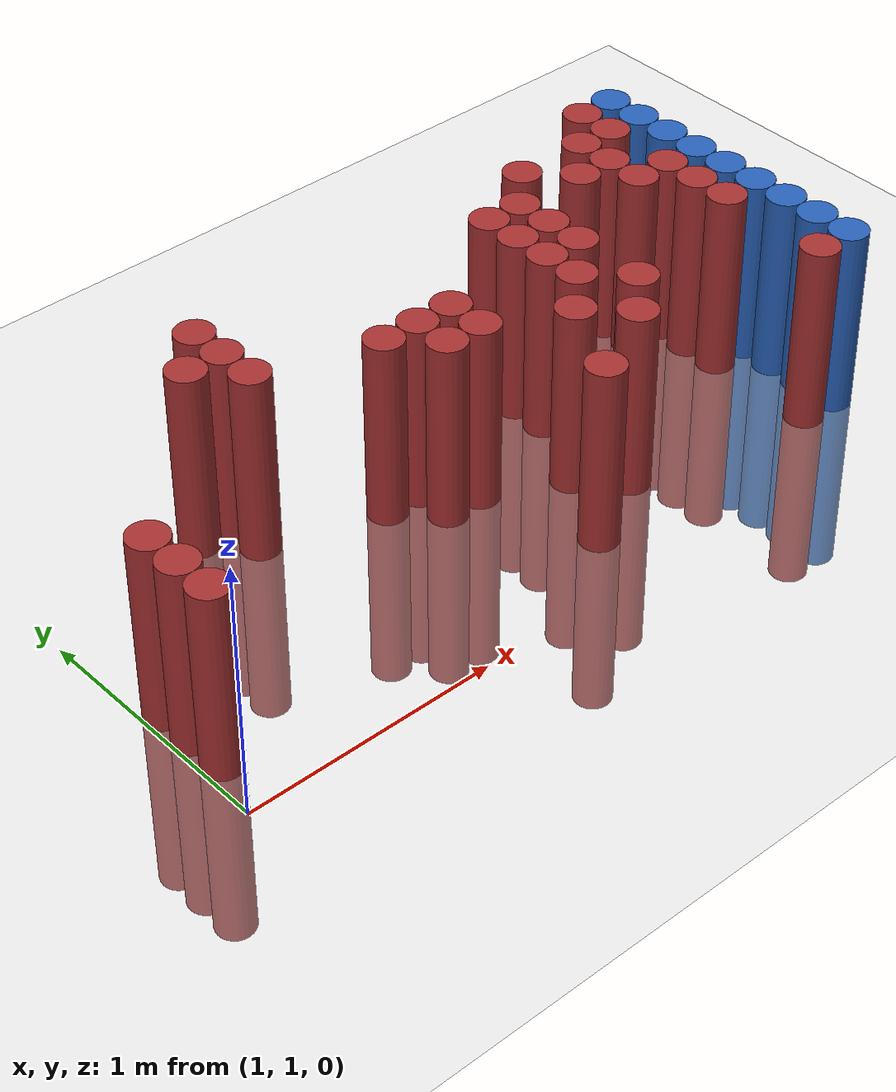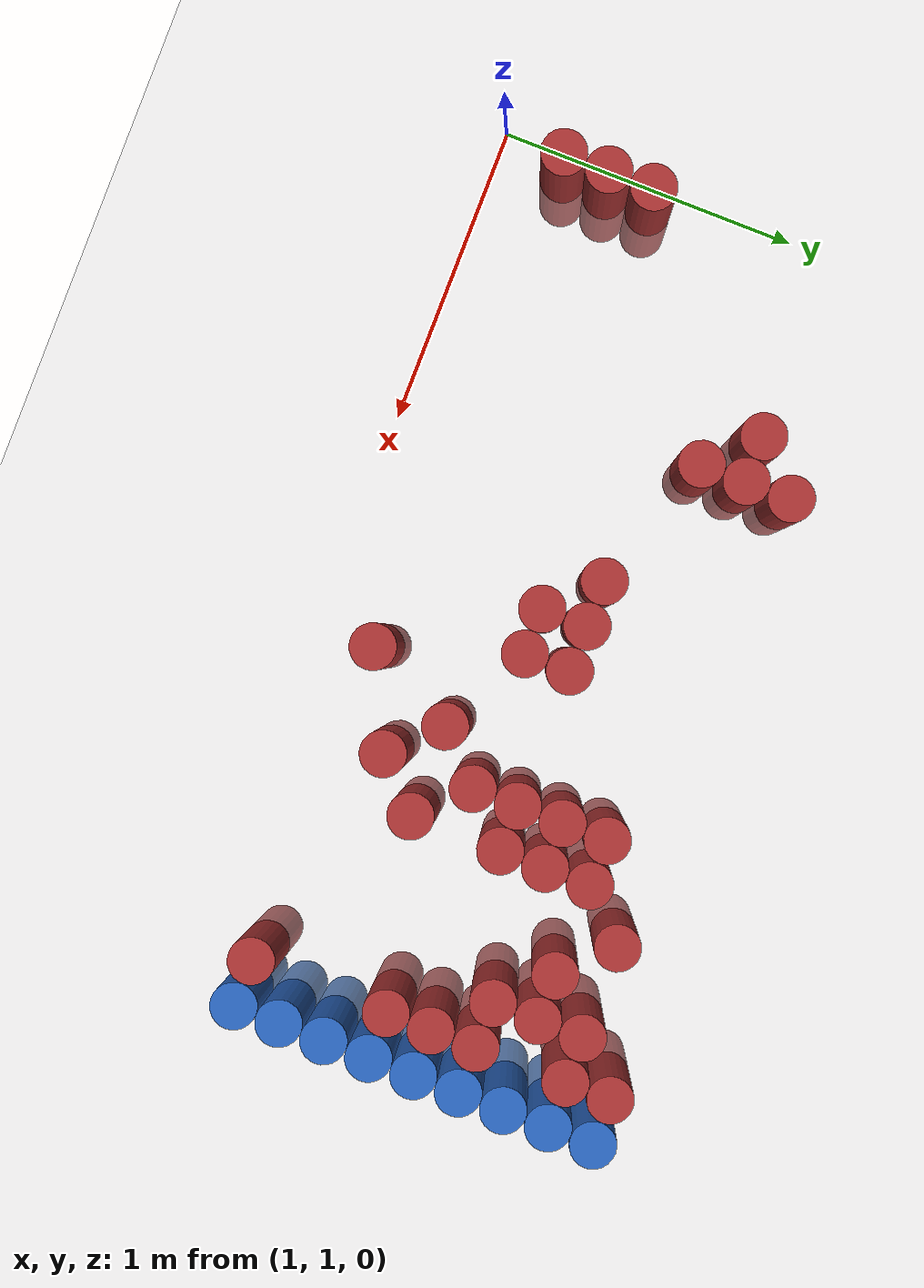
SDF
<sdf version="1.6">
 <world name="default">
  <model name="ground_plane">
   <static>1</static>
   <link name="link">
    <collision name="collision">
     <geometry><plane><normal>0 0 1</normal><size>100 100</size></plane></geometry>
     <surface><friction><ode><mu>100</mu><mu2>50</mu2></ode></friction></surface>
    </collision>
    <visual name="visual">
     <cast_shadows>0</cast_shadows>
     <geometry><plane><normal>0 0 1</normal><size>100 100</size></plane></geometry>
     <material>
      <script><uri>file://media/materials/scripts/gazebo.material</uri><name>Gazebo/Grey</name></script>
     </material>
    </visual>
   </link>
  </model>
  <model name="unit_cylinder_132">
   <static>1</static>
   <pose>3.925000 1.375000 0.000000 0.000000 0.000000 0.000000</pose>
   <link name="link">
    <inertial>
     <mass>1</mass>
     <inertia><ixx>0.145833</ixx><ixy>0</ixy><ixz>0</ixz><iyy>0.145833</iyy><iyz>0</iyz><izz>0.125</izz></inertia>
    </inertial>
    <collision name="collision">
     <geometry><cylinder><radius>0.075000</radius><length>1.5</length></cylinder></geometry>
    </collision>
    <visual name="visual">
     <geometry><cylinder><radius>0.075000</radius><length>1.5</length></cylinder></geometry>
     <material>
      <ambient>0.152000 0.379000 0.720000 1</ambient>
      <diffuse>0.152000 0.379000 0.720000 1</diffuse>
     </material>
     <material>
      <script><name>Gazebo/Grey</name><uri>file://media/materials/scripts/gazebo.material</uri></script>
     </material>
    </visual>
   </link>
  </model>
  <model name="unit_cylinder_134">
   <static>1</static>
   <pose>3.925000 1.525000 0.000000 0.000000 0.000000 0.000000</pose>
   <link name="link">
    <inertial>
     <mass>1</mass>
     <inertia><ixx>0.145833</ixx><ixy>0</ixy><ixz>0</ixz><iyy>0.145833</iyy><iyz>0</iyz><izz>0.125</izz></inertia>
    </inertial>
    <collision name="collision">
     <geometry><cylinder><radius>0.075000</radius><length>1.5</length></cylinder></geometry>
    </collision>
    <visual name="visual">
     <geometry><cylinder><radius>0.075000</radius><length>1.5</length></cylinder></geometry>
     <material>
      <ambient>0.152000 0.379000 0.720000 1</ambient>
      <diffuse>0.152000 0.379000 0.720000 1</diffuse>
     </material>
     <material>
      <script><name>Gazebo/Grey</name><uri>file://media/materials/scripts/gazebo.material</uri></script>
     </material>
    </visual>
   </link>
  </model>
  <model name="unit_cylinder_136">
   <static>1</static>
   <pose>3.925000 1.675000 0.000000 0.000000 0.000000 0.000000</pose>
   <link name="link">
    <inertial>
     <mass>1</mass>
     <inertia><ixx>0.145833</ixx><ixy>0</ixy><ixz>0</ixz><iyy>0.145833</iyy><iyz>0</iyz><izz>0.125</izz></inertia>
    </inertial>
    <collision name="collision">
     <geometry><cylinder><radius>0.075000</radius><length>1.5</length></cylinder></geometry>
    </collision>
    <visual name="visual">
     <geometry><cylinder><radius>0.075000</radius><length>1.5</length></cylinder></geometry>
     <material>
      <ambient>0.152000 0.379000 0.720000 1</ambient>
      <diffuse>0.152000 0.379000 0.720000 1</diffuse>
     </material>
     <material>
      <script><name>Gazebo/Grey</name><uri>file://media/materials/scripts/gazebo.material</uri></script>
     </material>
    </visual>
   </link>
  </model>
  <model name="unit_cylinder_138">
   <static>1</static>
   <pose>3.925000 1.825000 0.000000 0.000000 0.000000 0.000000</pose>
   <link name="link">
    <inertial>
     <mass>1</mass>
     <inertia><ixx>0.145833</ixx><ixy>0</ixy><ixz>0</ixz><iyy>0.145833</iyy><iyz>0</iyz><izz>0.125</izz></inertia>
    </inertial>
    <collision name="collision">
     <geometry><cylinder><radius>0.075000</radius><length>1.5</length></cylinder></geometry>
    </collision>
    <visual name="visual">
     <geometry><cylinder><radius>0.075000</radius><length>1.5</length></cylinder></geometry>
     <material>
      <ambient>0.152000 0.379000 0.720000 1</ambient>
      <diffuse>0.152000 0.379000 0.720000 1</diffuse>
     </material>
     <material>
      <script><name>Gazebo/Grey</name><uri>file://media/materials/scripts/gazebo.material</uri></script>
     </material>
    </visual>
   </link>
  </model>
  <model name="unit_cylinder_140">
   <static>1</static>
   <pose>3.925000 1.975000 0.000000 0.000000 0.000000 0.000000</pose>
   <link name="link">
    <inertial>
     <mass>1</mass>
     <inertia><ixx>0.145833</ixx><ixy>0</ixy><ixz>0</ixz><iyy>0.145833</iyy><iyz>0</iyz><izz>0.125</izz></inertia>
    </inertial>
    <collision name="collision">
     <geometry><cylinder><radius>0.075000</radius><length>1.5</length></cylinder></geometry>
    </collision>
    <visual name="visual">
     <geometry><cylinder><radius>0.075000</radius><length>1.5</length></cylinder></geometry>
     <material>
      <ambient>0.152000 0.379000 0.720000 1</ambient>
      <diffuse>0.152000 0.379000 0.720000 1</diffuse>
     </material>
     <material>
      <script><name>Gazebo/Grey</name><uri>file://media/materials/scripts/gazebo.material</uri></script>
     </material>
    </visual>
   </link>
  </model>
  <model name="unit_cylinder_142">
   <static>1</static>
   <pose>3.925000 2.125000 0.000000 0.000000 0.000000 0.000000</pose>
   <link name="link">
    <inertial>
     <mass>1</mass>
     <inertia><ixx>0.145833</ixx><ixy>0</ixy><ixz>0</ixz><iyy>0.145833</iyy><iyz>0</iyz><izz>0.125</izz></inertia>
    </inertial>
    <collision name="collision">
     <geometry><cylinder><radius>0.075000</radius><length>1.5</length></cylinder></geometry>
    </collision>
    <visual name="visual">
     <geometry><cylinder><radius>0.075000</radius><length>1.5</length></cylinder></geometry>
     <material>
      <ambient>0.152000 0.379000 0.720000 1</ambient>
      <diffuse>0.152000 0.379000 0.720000 1</diffuse>
     </material>
     <material>
      <script><name>Gazebo/Grey</name><uri>file://media/materials/scripts/gazebo.material</uri></script>
     </material>
    </visual>
   </link>
  </model>
  <model name="unit_cylinder_144">
   <static>1</static>
   <pose>3.925000 2.275000 0.000000 0.000000 0.000000 0.000000</pose>
   <link name="link">
    <inertial>
     <mass>1</mass>
     <inertia><ixx>0.145833</ixx><ixy>0</ixy><ixz>0</ixz><iyy>0.145833</iyy><iyz>0</iyz><izz>0.125</izz></inertia>
    </inertial>
    <collision name="collision">
     <geometry><cylinder><radius>0.075000</radius><length>1.5</length></cylinder></geometry>
    </collision>
    <visual name="visual">
     <geometry><cylinder><radius>0.075000</radius><length>1.5</length></cylinder></geometry>
     <material>
      <ambient>0.152000 0.379000 0.720000 1</ambient>
      <diffuse>0.152000 0.379000 0.720000 1</diffuse>
     </material>
     <material>
      <script><name>Gazebo/Grey</name><uri>file://media/materials/scripts/gazebo.material</uri></script>
     </material>
    </visual>
   </link>
  </model>
  <model name="unit_cylinder_146">
   <static>1</static>
   <pose>3.925000 2.425000 0.000000 0.000000 0.000000 0.000000</pose>
   <link name="link">
    <inertial>
     <mass>1</mass>
     <inertia><ixx>0.145833</ixx><ixy>0</ixy><ixz>0</ixz><iyy>0.145833</iyy><iyz>0</iyz><izz>0.125</izz></inertia>
    </inertial>
    <collision name="collision">
     <geometry><cylinder><radius>0.075000</radius><length>1.5</length></cylinder></geometry>
    </collision>
    <visual name="visual">
     <geometry><cylinder><radius>0.075000</radius><length>1.5</length></cylinder></geometry>
     <material>
      <ambient>0.152000 0.379000 0.720000 1</ambient>
      <diffuse>0.152000 0.379000 0.720000 1</diffuse>
     </material>
     <material>
      <script><name>Gazebo/Grey</name><uri>file://media/materials/scripts/gazebo.material</uri></script>
     </material>
    </visual>
   </link>
  </model>
  <model name="unit_cylinder_426">
   <static>1</static>
   <pose>1.075000 1.225000 0.000000 0.000000 0.000000 0.000000</pose>
   <link name="link">
    <inertial>
     <mass>1</mass>
     <inertia><ixx>0.145833</ixx><ixy>0</ixy><ixz>0</ixz><iyy>0.145833</iyy><iyz>0</iyz><izz>0.125</izz></inertia>
    </inertial>
    <collision name="collision">
     <geometry><cylinder><radius>0.075000</radius><length>1.5</length></cylinder></geometry>
    </collision>
    <visual name="visual">
     <geometry><cylinder><radius>0.075000</radius><length>1.5</length></cylinder></geometry>
     <material>
      <ambient>0.648000 0.192000 0.192000 1</ambient>
      <diffuse>0.648000 0.192000 0.192000 1</diffuse>
     </material>
     <material>
      <script><name>Gazebo/Grey</name><uri>file://media/materials/scripts/gazebo.material</uri></script>
     </material>
    </visual>
   </link>
  </model>
  <model name="unit_cylinder_427">
   <static>1</static>
   <pose>1.075000 1.375000 0.000000 0.000000 0.000000 0.000000</pose>
   <link name="link">
    <inertial>
     <mass>1</mass>
     <inertia><ixx>0.145833</ixx><ixy>0</ixy><ixz>0</ixz><iyy>0.145833</iyy><iyz>0</iyz><izz>0.125</izz></inertia>
    </inertial>
    <collision name="collision">
     <geometry><cylinder><radius>0.075000</radius><length>1.5</length></cylinder></geometry>
    </collision>
    <visual name="visual">
     <geometry><cylinder><radius>0.075000</radius><length>1.5</length></cylinder></geometry>
     <material>
      <ambient>0.648000 0.192000 0.192000 1</ambient>
      <diffuse>0.648000 0.192000 0.192000 1</diffuse>
     </material>
     <material>
      <script><name>Gazebo/Grey</name><uri>file://media/materials/scripts/gazebo.material</uri></script>
     </material>
    </visual>
   </link>
  </model>
  <model name="unit_cylinder_428">
   <static>1</static>
   <pose>1.075000 1.525000 0.000000 0.000000 0.000000 0.000000</pose>
   <link name="link">
    <inertial>
     <mass>1</mass>
     <inertia><ixx>0.145833</ixx><ixy>0</ixy><ixz>0</ixz><iyy>0.145833</iyy><iyz>0</iyz><izz>0.125</izz></inertia>
    </inertial>
    <collision name="collision">
     <geometry><cylinder><radius>0.075000</radius><length>1.5</length></cylinder></geometry>
    </collision>
    <visual name="visual">
     <geometry><cylinder><radius>0.075000</radius><length>1.5</length></cylinder></geometry>
     <material>
      <ambient>0.648000 0.192000 0.192000 1</ambient>
      <diffuse>0.648000 0.192000 0.192000 1</diffuse>
     </material>
     <material>
      <script><name>Gazebo/Grey</name><uri>file://media/materials/scripts/gazebo.material</uri></script>
     </material>
    </visual>
   </link>
  </model>
  <model name="unit_cylinder_453">
   <static>1</static>
   <pose>1.675000 2.125000 0.000000 0.000000 0.000000 0.000000</pose>
   <link name="link">
    <inertial>
     <mass>1</mass>
     <inertia><ixx>0.145833</ixx><ixy>0</ixy><ixz>0</ixz><iyy>0.145833</iyy><iyz>0</iyz><izz>0.125</izz></inertia>
    </inertial>
    <collision name="collision">
     <geometry><cylinder><radius>0.075000</radius><length>1.5</length></cylinder></geometry>
    </collision>
    <visual name="visual">
     <geometry><cylinder><radius>0.075000</radius><length>1.5</length></cylinder></geometry>
     <material>
      <ambient>0.648000 0.192000 0.192000 1</ambient>
      <diffuse>0.648000 0.192000 0.192000 1</diffuse>
     </material>
     <material>
      <script><name>Gazebo/Grey</name><uri>file://media/materials/scripts/gazebo.material</uri></script>
     </material>
    </visual>
   </link>
  </model>
  <model name="unit_cylinder_460">
   <static>1</static>
   <pose>1.825000 1.975000 0.000000 0.000000 0.000000 0.000000</pose>
   <link name="link">
    <inertial>
     <mass>1</mass>
     <inertia><ixx>0.145833</ixx><ixy>0</ixy><ixz>0</ixz><iyy>0.145833</iyy><iyz>0</iyz><izz>0.125</izz></inertia>
    </inertial>
    <collision name="collision">
     <geometry><cylinder><radius>0.075000</radius><length>1.5</length></cylinder></geometry>
    </collision>
    <visual name="visual">
     <geometry><cylinder><radius>0.075000</radius><length>1.5</length></cylinder></geometry>
     <material>
      <ambient>0.648000 0.192000 0.192000 1</ambient>
      <diffuse>0.648000 0.192000 0.192000 1</diffuse>
     </material>
     <material>
      <script><name>Gazebo/Grey</name><uri>file://media/materials/scripts/gazebo.material</uri></script>
     </material>
    </visual>
   </link>
  </model>
  <model name="unit_cylinder_461">
   <static>1</static>
   <pose>1.825000 2.125000 0.000000 0.000000 0.000000 0.000000</pose>
   <link name="link">
    <inertial>
     <mass>1</mass>
     <inertia><ixx>0.145833</ixx><ixy>0</ixy><ixz>0</ixz><iyy>0.145833</iyy><iyz>0</iyz><izz>0.125</izz></inertia>
    </inertial>
    <collision name="collision">
     <geometry><cylinder><radius>0.075000</radius><length>1.5</length></cylinder></geometry>
    </collision>
    <visual name="visual">
     <geometry><cylinder><radius>0.075000</radius><length>1.5</length></cylinder></geometry>
     <material>
      <ambient>0.648000 0.192000 0.192000 1</ambient>
      <diffuse>0.648000 0.192000 0.192000 1</diffuse>
     </material>
     <material>
      <script><name>Gazebo/Grey</name><uri>file://media/materials/scripts/gazebo.material</uri></script>
     </material>
    </visual>
   </link>
  </model>
  <model name="unit_cylinder_462">
   <static>1</static>
   <pose>1.825000 2.275000 0.000000 0.000000 0.000000 0.000000</pose>
   <link name="link">
    <inertial>
     <mass>1</mass>
     <inertia><ixx>0.145833</ixx><ixy>0</ixy><ixz>0</ixz><iyy>0.145833</iyy><iyz>0</iyz><izz>0.125</izz></inertia>
    </inertial>
    <collision name="collision">
     <geometry><cylinder><radius>0.075000</radius><length>1.5</length></cylinder></geometry>
    </collision>
    <visual name="visual">
     <geometry><cylinder><radius>0.075000</radius><length>1.5</length></cylinder></geometry>
     <material>
      <ambient>0.648000 0.192000 0.192000 1</ambient>
      <diffuse>0.648000 0.192000 0.192000 1</diffuse>
     </material>
     <material>
      <script><name>Gazebo/Grey</name><uri>file://media/materials/scripts/gazebo.material</uri></script>
     </material>
    </visual>
   </link>
  </model>
  <model name="unit_cylinder_469">
   <static>1</static>
   <pose>2.275000 1.825000 0.000000 0.000000 0.000000 0.000000</pose>
   <link name="link">
    <inertial>
     <mass>1</mass>
     <inertia><ixx>0.145833</ixx><ixy>0</ixy><ixz>0</ixz><iyy>0.145833</iyy><iyz>0</iyz><izz>0.125</izz></inertia>
    </inertial>
    <collision name="collision">
     <geometry><cylinder><radius>0.075000</radius><length>1.5</length></cylinder></geometry>
    </collision>
    <visual name="visual">
     <geometry><cylinder><radius>0.075000</radius><length>1.5</length></cylinder></geometry>
     <material>
      <ambient>0.648000 0.192000 0.192000 1</ambient>
      <diffuse>0.648000 0.192000 0.192000 1</diffuse>
     </material>
     <material>
      <script><name>Gazebo/Grey</name><uri>file://media/materials/scripts/gazebo.material</uri></script>
     </material>
    </visual>
   </link>
  </model>
  <model name="unit_cylinder_472">
   <static>1</static>
   <pose>2.425000 1.675000 0.000000 0.000000 0.000000 0.000000</pose>
   <link name="link">
    <inertial>
     <mass>1</mass>
     <inertia><ixx>0.145833</ixx><ixy>0</ixy><ixz>0</ixz><iyy>0.145833</iyy><iyz>0</iyz><izz>0.125</izz></inertia>
    </inertial>
    <collision name="collision">
     <geometry><cylinder><radius>0.075000</radius><length>1.5</length></cylinder></geometry>
    </collision>
    <visual name="visual">
     <geometry><cylinder><radius>0.075000</radius><length>1.5</length></cylinder></geometry>
     <material>
      <ambient>0.648000 0.192000 0.192000 1</ambient>
      <diffuse>0.648000 0.192000 0.192000 1</diffuse>
     </material>
     <material>
      <script><name>Gazebo/Grey</name><uri>file://media/materials/scripts/gazebo.material</uri></script>
     </material>
    </visual>
   </link>
  </model>
  <model name="unit_cylinder_473">
   <static>1</static>
   <pose>2.425000 1.825000 0.000000 0.000000 0.000000 0.000000</pose>
   <link name="link">
    <inertial>
     <mass>1</mass>
     <inertia><ixx>0.145833</ixx><ixy>0</ixy><ixz>0</ixz><iyy>0.145833</iyy><iyz>0</iyz><izz>0.125</izz></inertia>
    </inertial>
    <collision name="collision">
     <geometry><cylinder><radius>0.075000</radius><length>1.5</length></cylinder></geometry>
    </collision>
    <visual name="visual">
     <geometry><cylinder><radius>0.075000</radius><length>1.5</length></cylinder></geometry>
     <material>
      <ambient>0.648000 0.192000 0.192000 1</ambient>
      <diffuse>0.648000 0.192000 0.192000 1</diffuse>
     </material>
     <material>
      <script><name>Gazebo/Grey</name><uri>file://media/materials/scripts/gazebo.material</uri></script>
     </material>
    </visual>
   </link>
  </model>
  <model name="unit_cylinder_478">
   <static>1</static>
   <pose>2.575000 1.675000 0.000000 0.000000 0.000000 0.000000</pose>
   <link name="link">
    <inertial>
     <mass>1</mass>
     <inertia><ixx>0.145833</ixx><ixy>0</ixy><ixz>0</ixz><iyy>0.145833</iyy><iyz>0</iyz><izz>0.125</izz></inertia>
    </inertial>
    <collision name="collision">
     <geometry><cylinder><radius>0.075000</radius><length>1.5</length></cylinder></geometry>
    </collision>
    <visual name="visual">
     <geometry><cylinder><radius>0.075000</radius><length>1.5</length></cylinder></geometry>
     <material>
      <ambient>0.648000 0.192000 0.192000 1</ambient>
      <diffuse>0.648000 0.192000 0.192000 1</diffuse>
     </material>
     <material>
      <script><name>Gazebo/Grey</name><uri>file://media/materials/scripts/gazebo.material</uri></script>
     </material>
    </visual>
   </link>
  </model>
  <model name="unit_cylinder_479">
   <static>1</static>
   <pose>2.575000 1.825000 0.000000 0.000000 0.000000 0.000000</pose>
   <link name="link">
    <inertial>
     <mass>1</mass>
     <inertia><ixx>0.145833</ixx><ixy>0</ixy><ixz>0</ixz><iyy>0.145833</iyy><iyz>0</iyz><izz>0.125</izz></inertia>
    </inertial>
    <collision name="collision">
     <geometry><cylinder><radius>0.075000</radius><length>1.5</length></cylinder></geometry>
    </collision>
    <visual name="visual">
     <geometry><cylinder><radius>0.075000</radius><length>1.5</length></cylinder></geometry>
     <material>
      <ambient>0.648000 0.192000 0.192000 1</ambient>
      <diffuse>0.648000 0.192000 0.192000 1</diffuse>
     </material>
     <material>
      <script><name>Gazebo/Grey</name><uri>file://media/materials/scripts/gazebo.material</uri></script>
     </material>
    </visual>
   </link>
  </model>
  <model name="unit_cylinder_485">
   <static>1</static>
   <pose>2.725000 1.225000 0.000000 0.000000 0.000000 0.000000</pose>
   <link name="link">
    <inertial>
     <mass>1</mass>
     <inertia><ixx>0.145833</ixx><ixy>0</ixy><ixz>0</ixz><iyy>0.145833</iyy><iyz>0</iyz><izz>0.125</izz></inertia>
    </inertial>
    <collision name="collision">
     <geometry><cylinder><radius>0.075000</radius><length>1.5</length></cylinder></geometry>
    </collision>
    <visual name="visual">
     <geometry><cylinder><radius>0.075000</radius><length>1.5</length></cylinder></geometry>
     <material>
      <ambient>0.648000 0.192000 0.192000 1</ambient>
      <diffuse>0.648000 0.192000 0.192000 1</diffuse>
     </material>
     <material>
      <script><name>Gazebo/Grey</name><uri>file://media/materials/scripts/gazebo.material</uri></script>
     </material>
    </visual>
   </link>
  </model>
  <model name="unit_cylinder_487">
   <static>1</static>
   <pose>2.875000 1.525000 0.000000 0.000000 0.000000 0.000000</pose>
   <link name="link">
    <inertial>
     <mass>1</mass>
     <inertia><ixx>0.145833</ixx><ixy>0</ixy><ixz>0</ixz><iyy>0.145833</iyy><iyz>0</iyz><izz>0.125</izz></inertia>
    </inertial>
    <collision name="collision">
     <geometry><cylinder><radius>0.075000</radius><length>1.5</length></cylinder></geometry>
    </collision>
    <visual name="visual">
     <geometry><cylinder><radius>0.075000</radius><length>1.5</length></cylinder></geometry>
     <material>
      <ambient>0.648000 0.192000 0.192000 1</ambient>
      <diffuse>0.648000 0.192000 0.192000 1</diffuse>
     </material>
     <material>
      <script><name>Gazebo/Grey</name><uri>file://media/materials/scripts/gazebo.material</uri></script>
     </material>
    </visual>
   </link>
  </model>
  <model name="unit_cylinder_492">
   <static>1</static>
   <pose>3.025000 1.375000 0.000000 0.000000 0.000000 0.000000</pose>
   <link name="link">
    <inertial>
     <mass>1</mass>
     <inertia><ixx>0.145833</ixx><ixy>0</ixy><ixz>0</ixz><iyy>0.145833</iyy><iyz>0</iyz><izz>0.125</izz></inertia>
    </inertial>
    <collision name="collision">
     <geometry><cylinder><radius>0.075000</radius><length>1.5</length></cylinder></geometry>
    </collision>
    <visual name="visual">
     <geometry><cylinder><radius>0.075000</radius><length>1.5</length></cylinder></geometry>
     <material>
      <ambient>0.648000 0.192000 0.192000 1</ambient>
      <diffuse>0.648000 0.192000 0.192000 1</diffuse>
     </material>
     <material>
      <script><name>Gazebo/Grey</name><uri>file://media/materials/scripts/gazebo.material</uri></script>
     </material>
    </visual>
   </link>
  </model>
  <model name="unit_cylinder_493">
   <static>1</static>
   <pose>3.025000 1.675000 0.000000 0.000000 0.000000 0.000000</pose>
   <link name="link">
    <inertial>
     <mass>1</mass>
     <inertia><ixx>0.145833</ixx><ixy>0</ixy><ixz>0</ixz><iyy>0.145833</iyy><iyz>0</iyz><izz>0.125</izz></inertia>
    </inertial>
    <collision name="collision">
     <geometry><cylinder><radius>0.075000</radius><length>1.5</length></cylinder></geometry>
    </collision>
    <visual name="visual">
     <geometry><cylinder><radius>0.075000</radius><length>1.5</length></cylinder></geometry>
     <material>
      <ambient>0.648000 0.192000 0.192000 1</ambient>
      <diffuse>0.648000 0.192000 0.192000 1</diffuse>
     </material>
     <material>
      <script><name>Gazebo/Grey</name><uri>file://media/materials/scripts/gazebo.material</uri></script>
     </material>
    </visual>
   </link>
  </model>
  <model name="unit_cylinder_494">
   <static>1</static>
   <pose>3.025000 1.825000 0.000000 0.000000 0.000000 0.000000</pose>
   <link name="link">
    <inertial>
     <mass>1</mass>
     <inertia><ixx>0.145833</ixx><ixy>0</ixy><ixz>0</ixz><iyy>0.145833</iyy><iyz>0</iyz><izz>0.125</izz></inertia>
    </inertial>
    <collision name="collision">
     <geometry><cylinder><radius>0.075000</radius><length>1.5</length></cylinder></geometry>
    </collision>
    <visual name="visual">
     <geometry><cylinder><radius>0.075000</radius><length>1.5</length></cylinder></geometry>
     <material>
      <ambient>0.648000 0.192000 0.192000 1</ambient>
      <diffuse>0.648000 0.192000 0.192000 1</diffuse>
     </material>
     <material>
      <script><name>Gazebo/Grey</name><uri>file://media/materials/scripts/gazebo.material</uri></script>
     </material>
    </visual>
   </link>
  </model>
  <model name="unit_cylinder_495">
   <static>1</static>
   <pose>3.025000 1.975000 0.000000 0.000000 0.000000 0.000000</pose>
   <link name="link">
    <inertial>
     <mass>1</mass>
     <inertia><ixx>0.145833</ixx><ixy>0</ixy><ixz>0</ixz><iyy>0.145833</iyy><iyz>0</iyz><izz>0.125</izz></inertia>
    </inertial>
    <collision name="collision">
     <geometry><cylinder><radius>0.075000</radius><length>1.5</length></cylinder></geometry>
    </collision>
    <visual name="visual">
     <geometry><cylinder><radius>0.075000</radius><length>1.5</length></cylinder></geometry>
     <material>
      <ambient>0.648000 0.192000 0.192000 1</ambient>
      <diffuse>0.648000 0.192000 0.192000 1</diffuse>
     </material>
     <material>
      <script><name>Gazebo/Grey</name><uri>file://media/materials/scripts/gazebo.material</uri></script>
     </material>
    </visual>
   </link>
  </model>
  <model name="unit_cylinder_496">
   <static>1</static>
   <pose>3.025000 2.125000 0.000000 0.000000 0.000000 0.000000</pose>
   <link name="link">
    <inertial>
     <mass>1</mass>
     <inertia><ixx>0.145833</ixx><ixy>0</ixy><ixz>0</ixz><iyy>0.145833</iyy><iyz>0</iyz><izz>0.125</izz></inertia>
    </inertial>
    <collision name="collision">
     <geometry><cylinder><radius>0.075000</radius><length>1.5</length></cylinder></geometry>
    </collision>
    <visual name="visual">
     <geometry><cylinder><radius>0.075000</radius><length>1.5</length></cylinder></geometry>
     <material>
      <ambient>0.648000 0.192000 0.192000 1</ambient>
      <diffuse>0.648000 0.192000 0.192000 1</diffuse>
     </material>
     <material>
      <script><name>Gazebo/Grey</name><uri>file://media/materials/scripts/gazebo.material</uri></script>
     </material>
    </visual>
   </link>
  </model>
  <model name="unit_cylinder_501">
   <static>1</static>
   <pose>3.175000 1.525000 0.000000 0.000000 0.000000 0.000000</pose>
   <link name="link">
    <inertial>
     <mass>1</mass>
     <inertia><ixx>0.145833</ixx><ixy>0</ixy><ixz>0</ixz><iyy>0.145833</iyy><iyz>0</iyz><izz>0.125</izz></inertia>
    </inertial>
    <collision name="collision">
     <geometry><cylinder><radius>0.075000</radius><length>1.5</length></cylinder></geometry>
    </collision>
    <visual name="visual">
     <geometry><cylinder><radius>0.075000</radius><length>1.5</length></cylinder></geometry>
     <material>
      <ambient>0.648000 0.192000 0.192000 1</ambient>
      <diffuse>0.648000 0.192000 0.192000 1</diffuse>
     </material>
     <material>
      <script><name>Gazebo/Grey</name><uri>file://media/materials/scripts/gazebo.material</uri></script>
     </material>
    </visual>
   </link>
  </model>
  <model name="unit_cylinder_502">
   <static>1</static>
   <pose>3.175000 1.825000 0.000000 0.000000 0.000000 0.000000</pose>
   <link name="link">
    <inertial>
     <mass>1</mass>
     <inertia><ixx>0.145833</ixx><ixy>0</ixy><ixz>0</ixz><iyy>0.145833</iyy><iyz>0</iyz><izz>0.125</izz></inertia>
    </inertial>
    <collision name="collision">
     <geometry><cylinder><radius>0.075000</radius><length>1.5</length></cylinder></geometry>
    </collision>
    <visual name="visual">
     <geometry><cylinder><radius>0.075000</radius><length>1.5</length></cylinder></geometry>
     <material>
      <ambient>0.648000 0.192000 0.192000 1</ambient>
      <diffuse>0.648000 0.192000 0.192000 1</diffuse>
     </material>
     <material>
      <script><name>Gazebo/Grey</name><uri>file://media/materials/scripts/gazebo.material</uri></script>
     </material>
    </visual>
   </link>
  </model>
  <model name="unit_cylinder_503">
   <static>1</static>
   <pose>3.175000 1.975000 0.000000 0.000000 0.000000 0.000000</pose>
   <link name="link">
    <inertial>
     <mass>1</mass>
     <inertia><ixx>0.145833</ixx><ixy>0</ixy><ixz>0</ixz><iyy>0.145833</iyy><iyz>0</iyz><izz>0.125</izz></inertia>
    </inertial>
    <collision name="collision">
     <geometry><cylinder><radius>0.075000</radius><length>1.5</length></cylinder></geometry>
    </collision>
    <visual name="visual">
     <geometry><cylinder><radius>0.075000</radius><length>1.5</length></cylinder></geometry>
     <material>
      <ambient>0.648000 0.192000 0.192000 1</ambient>
      <diffuse>0.648000 0.192000 0.192000 1</diffuse>
     </material>
     <material>
      <script><name>Gazebo/Grey</name><uri>file://media/materials/scripts/gazebo.material</uri></script>
     </material>
    </visual>
   </link>
  </model>
  <model name="unit_cylinder_504">
   <static>1</static>
   <pose>3.175000 2.125000 0.000000 0.000000 0.000000 0.000000</pose>
   <link name="link">
    <inertial>
     <mass>1</mass>
     <inertia><ixx>0.145833</ixx><ixy>0</ixy><ixz>0</ixz><iyy>0.145833</iyy><iyz>0</iyz><izz>0.125</izz></inertia>
    </inertial>
    <collision name="collision">
     <geometry><cylinder><radius>0.075000</radius><length>1.5</length></cylinder></geometry>
    </collision>
    <visual name="visual">
     <geometry><cylinder><radius>0.075000</radius><length>1.5</length></cylinder></geometry>
     <material>
      <ambient>0.648000 0.192000 0.192000 1</ambient>
      <diffuse>0.648000 0.192000 0.192000 1</diffuse>
     </material>
     <material>
      <script><name>Gazebo/Grey</name><uri>file://media/materials/scripts/gazebo.material</uri></script>
     </material>
    </visual>
   </link>
  </model>
  <model name="unit_cylinder_513">
   <static>1</static>
   <pose>3.325000 2.275000 0.000000 0.000000 0.000000 0.000000</pose>
   <link name="link">
    <inertial>
     <mass>1</mass>
     <inertia><ixx>0.145833</ixx><ixy>0</ixy><ixz>0</ixz><iyy>0.145833</iyy><iyz>0</iyz><izz>0.125</izz></inertia>
    </inertial>
    <collision name="collision">
     <geometry><cylinder><radius>0.075000</radius><length>1.5</length></cylinder></geometry>
    </collision>
    <visual name="visual">
     <geometry><cylinder><radius>0.075000</radius><length>1.5</length></cylinder></geometry>
     <material>
      <ambient>0.648000 0.192000 0.192000 1</ambient>
      <diffuse>0.648000 0.192000 0.192000 1</diffuse>
     </material>
     <material>
      <script><name>Gazebo/Grey</name><uri>file://media/materials/scripts/gazebo.material</uri></script>
     </material>
    </visual>
   </link>
  </model>
  <model name="unit_cylinder_519">
   <static>1</static>
   <pose>3.475000 2.125000 0.000000 0.000000 0.000000 0.000000</pose>
   <link name="link">
    <inertial>
     <mass>1</mass>
     <inertia><ixx>0.145833</ixx><ixy>0</ixy><ixz>0</ixz><iyy>0.145833</iyy><iyz>0</iyz><izz>0.125</izz></inertia>
    </inertial>
    <collision name="collision">
     <geometry><cylinder><radius>0.075000</radius><length>1.5</length></cylinder></geometry>
    </collision>
    <visual name="visual">
     <geometry><cylinder><radius>0.075000</radius><length>1.5</length></cylinder></geometry>
     <material>
      <ambient>0.648000 0.192000 0.192000 1</ambient>
      <diffuse>0.648000 0.192000 0.192000 1</diffuse>
     </material>
     <material>
      <script><name>Gazebo/Grey</name><uri>file://media/materials/scripts/gazebo.material</uri></script>
     </material>
    </visual>
   </link>
  </model>
  <model name="unit_cylinder_527">
   <static>1</static>
   <pose>3.625000 1.975000 0.000000 0.000000 0.000000 0.000000</pose>
   <link name="link">
    <inertial>
     <mass>1</mass>
     <inertia><ixx>0.145833</ixx><ixy>0</ixy><ixz>0</ixz><iyy>0.145833</iyy><iyz>0</iyz><izz>0.125</izz></inertia>
    </inertial>
    <collision name="collision">
     <geometry><cylinder><radius>0.075000</radius><length>1.5</length></cylinder></geometry>
    </collision>
    <visual name="visual">
     <geometry><cylinder><radius>0.075000</radius><length>1.5</length></cylinder></geometry>
     <material>
      <ambient>0.648000 0.192000 0.192000 1</ambient>
      <diffuse>0.648000 0.192000 0.192000 1</diffuse>
     </material>
     <material>
      <script><name>Gazebo/Grey</name><uri>file://media/materials/scripts/gazebo.material</uri></script>
     </material>
    </visual>
   </link>
  </model>
  <model name="unit_cylinder_528">
   <static>1</static>
   <pose>3.625000 2.125000 0.000000 0.000000 0.000000 0.000000</pose>
   <link name="link">
    <inertial>
     <mass>1</mass>
     <inertia><ixx>0.145833</ixx><ixy>0</ixy><ixz>0</ixz><iyy>0.145833</iyy><iyz>0</iyz><izz>0.125</izz></inertia>
    </inertial>
    <collision name="collision">
     <geometry><cylinder><radius>0.075000</radius><length>1.5</length></cylinder></geometry>
    </collision>
    <visual name="visual">
     <geometry><cylinder><radius>0.075000</radius><length>1.5</length></cylinder></geometry>
     <material>
      <ambient>0.648000 0.192000 0.192000 1</ambient>
      <diffuse>0.648000 0.192000 0.192000 1</diffuse>
     </material>
     <material>
      <script><name>Gazebo/Grey</name><uri>file://media/materials/scripts/gazebo.material</uri></script>
     </material>
    </visual>
   </link>
  </model>
  <model name="unit_cylinder_529">
   <static>1</static>
   <pose>3.625000 2.275000 0.000000 0.000000 0.000000 0.000000</pose>
   <link name="link">
    <inertial>
     <mass>1</mass>
     <inertia><ixx>0.145833</ixx><ixy>0</ixy><ixz>0</ixz><iyy>0.145833</iyy><iyz>0</iyz><izz>0.125</izz></inertia>
    </inertial>
    <collision name="collision">
     <geometry><cylinder><radius>0.075000</radius><length>1.5</length></cylinder></geometry>
    </collision>
    <visual name="visual">
     <geometry><cylinder><radius>0.075000</radius><length>1.5</length></cylinder></geometry>
     <material>
      <ambient>0.648000 0.192000 0.192000 1</ambient>
      <diffuse>0.648000 0.192000 0.192000 1</diffuse>
     </material>
     <material>
      <script><name>Gazebo/Grey</name><uri>file://media/materials/scripts/gazebo.material</uri></script>
     </material>
    </visual>
   </link>
  </model>
  <model name="unit_cylinder_546">
   <static>1</static>
   <pose>3.775000 1.225000 0.000000 0.000000 0.000000 0.000000</pose>
   <link name="link">
    <inertial>
     <mass>1</mass>
     <inertia><ixx>0.145833</ixx><ixy>0</ixy><ixz>0</ixz><iyy>0.145833</iyy><iyz>0</iyz><izz>0.125</izz></inertia>
    </inertial>
    <collision name="collision">
     <geometry><cylinder><radius>0.075000</radius><length>1.5</length></cylinder></geometry>
    </collision>
    <visual name="visual">
     <geometry><cylinder><radius>0.075000</radius><length>1.5</length></cylinder></geometry>
     <material>
      <ambient>0.648000 0.192000 0.192000 1</ambient>
      <diffuse>0.648000 0.192000 0.192000 1</diffuse>
     </material>
     <material>
      <script><name>Gazebo/Grey</name><uri>file://media/materials/scripts/gazebo.material</uri></script>
     </material>
    </visual>
   </link>
  </model>
  <model name="unit_cylinder_547">
   <static>1</static>
   <pose>3.775000 1.675000 0.000000 0.000000 0.000000 0.000000</pose>
   <link name="link">
    <inertial>
     <mass>1</mass>
     <inertia><ixx>0.145833</ixx><ixy>0</ixy><ixz>0</ixz><iyy>0.145833</iyy><iyz>0</iyz><izz>0.125</izz></inertia>
    </inertial>
    <collision name="collision">
     <geometry><cylinder><radius>0.075000</radius><length>1.5</length></cylinder></geometry>
    </collision>
    <visual name="visual">
     <geometry><cylinder><radius>0.075000</radius><length>1.5</length></cylinder></geometry>
     <material>
      <ambient>0.648000 0.192000 0.192000 1</ambient>
      <diffuse>0.648000 0.192000 0.192000 1</diffuse>
     </material>
     <material>
      <script><name>Gazebo/Grey</name><uri>file://media/materials/scripts/gazebo.material</uri></script>
     </material>
    </visual>
   </link>
  </model>
  <model name="unit_cylinder_548">
   <static>1</static>
   <pose>3.775000 1.825000 0.000000 0.000000 0.000000 0.000000</pose>
   <link name="link">
    <inertial>
     <mass>1</mass>
     <inertia><ixx>0.145833</ixx><ixy>0</ixy><ixz>0</ixz><iyy>0.145833</iyy><iyz>0</iyz><izz>0.125</izz></inertia>
    </inertial>
    <collision name="collision">
     <geometry><cylinder><radius>0.075000</radius><length>1.5</length></cylinder></geometry>
    </collision>
    <visual name="visual">
     <geometry><cylinder><radius>0.075000</radius><length>1.5</length></cylinder></geometry>
     <material>
      <ambient>0.648000 0.192000 0.192000 1</ambient>
      <diffuse>0.648000 0.192000 0.192000 1</diffuse>
     </material>
     <material>
      <script><name>Gazebo/Grey</name><uri>file://media/materials/scripts/gazebo.material</uri></script>
     </material>
    </visual>
   </link>
  </model>
  <model name="unit_cylinder_549">
   <static>1</static>
   <pose>3.775000 1.975000 0.000000 0.000000 0.000000 0.000000</pose>
   <link name="link">
    <inertial>
     <mass>1</mass>
     <inertia><ixx>0.145833</ixx><ixy>0</ixy><ixz>0</ixz><iyy>0.145833</iyy><iyz>0</iyz><izz>0.125</izz></inertia>
    </inertial>
    <collision name="collision">
     <geometry><cylinder><radius>0.075000</radius><length>1.5</length></cylinder></geometry>
    </collision>
    <visual name="visual">
     <geometry><cylinder><radius>0.075000</radius><length>1.5</length></cylinder></geometry>
     <material>
      <ambient>0.648000 0.192000 0.192000 1</ambient>
      <diffuse>0.648000 0.192000 0.192000 1</diffuse>
     </material>
     <material>
      <script><name>Gazebo/Grey</name><uri>file://media/materials/scripts/gazebo.material</uri></script>
     </material>
    </visual>
   </link>
  </model>
  <model name="unit_cylinder_550">
   <static>1</static>
   <pose>3.775000 2.275000 0.000000 0.000000 0.000000 0.000000</pose>
   <link name="link">
    <inertial>
     <mass>1</mass>
     <inertia><ixx>0.145833</ixx><ixy>0</ixy><ixz>0</ixz><iyy>0.145833</iyy><iyz>0</iyz><izz>0.125</izz></inertia>
    </inertial>
    <collision name="collision">
     <geometry><cylinder><radius>0.075000</radius><length>1.5</length></cylinder></geometry>
    </collision>
    <visual name="visual">
     <geometry><cylinder><radius>0.075000</radius><length>1.5</length></cylinder></geometry>
     <material>
      <ambient>0.648000 0.192000 0.192000 1</ambient>
      <diffuse>0.648000 0.192000 0.192000 1</diffuse>
     </material>
     <material>
      <script><name>Gazebo/Grey</name><uri>file://media/materials/scripts/gazebo.material</uri></script>
     </material>
    </visual>
   </link>
  </model>
  <model name="unit_cylinder_551">
   <static>1</static>
   <pose>3.775000 2.425000 0.000000 0.000000 0.000000 0.000000</pose>
   <link name="link">
    <inertial>
     <mass>1</mass>
     <inertia><ixx>0.145833</ixx><ixy>0</ixy><ixz>0</ixz><iyy>0.145833</iyy><iyz>0</iyz><izz>0.125</izz></inertia>
    </inertial>
    <collision name="collision">
     <geometry><cylinder><radius>0.075000</radius><length>1.5</length></cylinder></geometry>
    </collision>
    <visual name="visual">
     <geometry><cylinder><radius>0.075000</radius><length>1.5</length></cylinder></geometry>
     <material>
      <ambient>0.648000 0.192000 0.192000 1</ambient>
      <diffuse>0.648000 0.192000 0.192000 1</diffuse>
     </material>
     <material>
      <script><name>Gazebo/Grey</name><uri>file://media/materials/scripts/gazebo.material</uri></script>
     </material>
    </visual>
   </link>
  </model>
  <model name="unit_cylinder_584">
   <static>1</static>
   <pose>3.925000 1.225000 0.000000 0.000000 0.000000 0.000000</pose>
   <link name="link">
    <inertial>
     <mass>1</mass>
     <inertia><ixx>0.145833</ixx><ixy>0</ixy><ixz>0</ixz><iyy>0.145833</iyy><iyz>0</iyz><izz>0.125</izz></inertia>
    </inertial>
    <collision name="collision">
     <geometry><cylinder><radius>0.075000</radius><length>1.5</length></cylinder></geometry>
    </collision>
    <visual name="visual">
     <geometry><cylinder><radius>0.075000</radius><length>1.5</length></cylinder></geometry>
     <material>
      <ambient>0.152000 0.379000 0.720000 1</ambient>
      <diffuse>0.152000 0.379000 0.720000 1</diffuse>
     </material>
     <material>
      <script><name>Gazebo/Grey</name><uri>file://media/materials/scripts/gazebo.material</uri></script>
     </material>
    </visual>
   </link>
  </model>
  <model name="unit_cylinder_585">
   <static>1</static>
   <pose>3.925000 1.375000 0.000000 0.000000 0.000000 0.000000</pose>
   <link name="link">
    <inertial>
     <mass>1</mass>
     <inertia><ixx>0.145833</ixx><ixy>0</ixy><ixz>0</ixz><iyy>0.145833</iyy><iyz>0</iyz><izz>0.125</izz></inertia>
    </inertial>
    <collision name="collision">
     <geometry><cylinder><radius>0.075000</radius><length>1.5</length></cylinder></geometry>
    </collision>
    <visual name="visual">
     <geometry><cylinder><radius>0.075000</radius><length>1.5</length></cylinder></geometry>
     <material>
      <ambient>0.152000 0.379000 0.720000 1</ambient>
      <diffuse>0.152000 0.379000 0.720000 1</diffuse>
     </material>
     <material>
      <script><name>Gazebo/Grey</name><uri>file://media/materials/scripts/gazebo.material</uri></script>
     </material>
    </visual>
   </link>
  </model>
  <model name="unit_cylinder_586">
   <static>1</static>
   <pose>3.925000 1.525000 0.000000 0.000000 0.000000 0.000000</pose>
   <link name="link">
    <inertial>
     <mass>1</mass>
     <inertia><ixx>0.145833</ixx><ixy>0</ixy><ixz>0</ixz><iyy>0.145833</iyy><iyz>0</iyz><izz>0.125</izz></inertia>
    </inertial>
    <collision name="collision">
     <geometry><cylinder><radius>0.075000</radius><length>1.5</length></cylinder></geometry>
    </collision>
    <visual name="visual">
     <geometry><cylinder><radius>0.075000</radius><length>1.5</length></cylinder></geometry>
     <material>
      <ambient>0.152000 0.379000 0.720000 1</ambient>
      <diffuse>0.152000 0.379000 0.720000 1</diffuse>
     </material>
     <material>
      <script><name>Gazebo/Grey</name><uri>file://media/materials/scripts/gazebo.material</uri></script>
     </material>
    </visual>
   </link>
  </model>
  <model name="unit_cylinder_587">
   <static>1</static>
   <pose>3.925000 1.675000 0.000000 0.000000 0.000000 0.000000</pose>
   <link name="link">
    <inertial>
     <mass>1</mass>
     <inertia><ixx>0.145833</ixx><ixy>0</ixy><ixz>0</ixz><iyy>0.145833</iyy><iyz>0</iyz><izz>0.125</izz></inertia>
    </inertial>
    <collision name="collision">
     <geometry><cylinder><radius>0.075000</radius><length>1.5</length></cylinder></geometry>
    </collision>
    <visual name="visual">
     <geometry><cylinder><radius>0.075000</radius><length>1.5</length></cylinder></geometry>
     <material>
      <ambient>0.152000 0.379000 0.720000 1</ambient>
      <diffuse>0.152000 0.379000 0.720000 1</diffuse>
     </material>
     <material>
      <script><name>Gazebo/Grey</name><uri>file://media/materials/scripts/gazebo.material</uri></script>
     </material>
    </visual>
   </link>
  </model>
  <model name="unit_cylinder_588">
   <static>1</static>
   <pose>3.925000 1.825000 0.000000 0.000000 0.000000 0.000000</pose>
   <link name="link">
    <inertial>
     <mass>1</mass>
     <inertia><ixx>0.145833</ixx><ixy>0</ixy><ixz>0</ixz><iyy>0.145833</iyy><iyz>0</iyz><izz>0.125</izz></inertia>
    </inertial>
    <collision name="collision">
     <geometry><cylinder><radius>0.075000</radius><length>1.5</length></cylinder></geometry>
    </collision>
    <visual name="visual">
     <geometry><cylinder><radius>0.075000</radius><length>1.5</length></cylinder></geometry>
     <material>
      <ambient>0.152000 0.379000 0.720000 1</ambient>
      <diffuse>0.152000 0.379000 0.720000 1</diffuse>
     </material>
     <material>
      <script><name>Gazebo/Grey</name><uri>file://media/materials/scripts/gazebo.material</uri></script>
     </material>
    </visual>
   </link>
  </model>
  <model name="unit_cylinder_589">
   <static>1</static>
   <pose>3.925000 1.975000 0.000000 0.000000 0.000000 0.000000</pose>
   <link name="link">
    <inertial>
     <mass>1</mass>
     <inertia><ixx>0.145833</ixx><ixy>0</ixy><ixz>0</ixz><iyy>0.145833</iyy><iyz>0</iyz><izz>0.125</izz></inertia>
    </inertial>
    <collision name="collision">
     <geometry><cylinder><radius>0.075000</radius><length>1.5</length></cylinder></geometry>
    </collision>
    <visual name="visual">
     <geometry><cylinder><radius>0.075000</radius><length>1.5</length></cylinder></geometry>
     <material>
      <ambient>0.152000 0.379000 0.720000 1</ambient>
      <diffuse>0.152000 0.379000 0.720000 1</diffuse>
     </material>
     <material>
      <script><name>Gazebo/Grey</name><uri>file://media/materials/scripts/gazebo.material</uri></script>
     </material>
    </visual>
   </link>
  </model>
  <model name="unit_cylinder_590">
   <static>1</static>
   <pose>3.925000 2.125000 0.000000 0.000000 0.000000 0.000000</pose>
   <link name="link">
    <inertial>
     <mass>1</mass>
     <inertia><ixx>0.145833</ixx><ixy>0</ixy><ixz>0</ixz><iyy>0.145833</iyy><iyz>0</iyz><izz>0.125</izz></inertia>
    </inertial>
    <collision name="collision">
     <geometry><cylinder><radius>0.075000</radius><length>1.5</length></cylinder></geometry>
    </collision>
    <visual name="visual">
     <geometry><cylinder><radius>0.075000</radius><length>1.5</length></cylinder></geometry>
     <material>
      <ambient>0.152000 0.379000 0.720000 1</ambient>
      <diffuse>0.152000 0.379000 0.720000 1</diffuse>
     </material>
     <material>
      <script><name>Gazebo/Grey</name><uri>file://media/materials/scripts/gazebo.material</uri></script>
     </material>
    </visual>
   </link>
  </model>
  <model name="unit_cylinder_591">
   <static>1</static>
   <pose>3.925000 2.275000 0.000000 0.000000 0.000000 0.000000</pose>
   <link name="link">
    <inertial>
     <mass>1</mass>
     <inertia><ixx>0.145833</ixx><ixy>0</ixy><ixz>0</ixz><iyy>0.145833</iyy><iyz>0</iyz><izz>0.125</izz></inertia>
    </inertial>
    <collision name="collision">
     <geometry><cylinder><radius>0.075000</radius><length>1.5</length></cylinder></geometry>
    </collision>
    <visual name="visual">
     <geometry><cylinder><radius>0.075000</radius><length>1.5</length></cylinder></geometry>
     <material>
      <ambient>0.152000 0.379000 0.720000 1</ambient>
      <diffuse>0.152000 0.379000 0.720000 1</diffuse>
     </material>
     <material>
      <script><name>Gazebo/Grey</name><uri>file://media/materials/scripts/gazebo.material</uri></script>
     </material>
    </visual>
   </link>
  </model>
  <model name="unit_cylinder_592">
   <static>1</static>
   <pose>3.925000 2.425000 0.000000 0.000000 0.000000 0.000000</pose>
   <link name="link">
    <inertial>
     <mass>1</mass>
     <inertia><ixx>0.145833</ixx><ixy>0</ixy><ixz>0</ixz><iyy>0.145833</iyy><iyz>0</iyz><izz>0.125</izz></inertia>
    </inertial>
    <collision name="collision">
     <geometry><cylinder><radius>0.075000</radius><length>1.5</length></cylinder></geometry>
    </collision>
    <visual name="visual">
     <geometry><cylinder><radius>0.075000</radius><length>1.5</length></cylinder></geometry>
     <material>
      <ambient>0.152000 0.379000 0.720000 1</ambient>
      <diffuse>0.152000 0.379000 0.720000 1</diffuse>
     </material>
     <material>
      <script><name>Gazebo/Grey</name><uri>file://media/materials/scripts/gazebo.material</uri></script>
     </material>
    </visual>
   </link>
  </model>
 </world>
</sdf>
